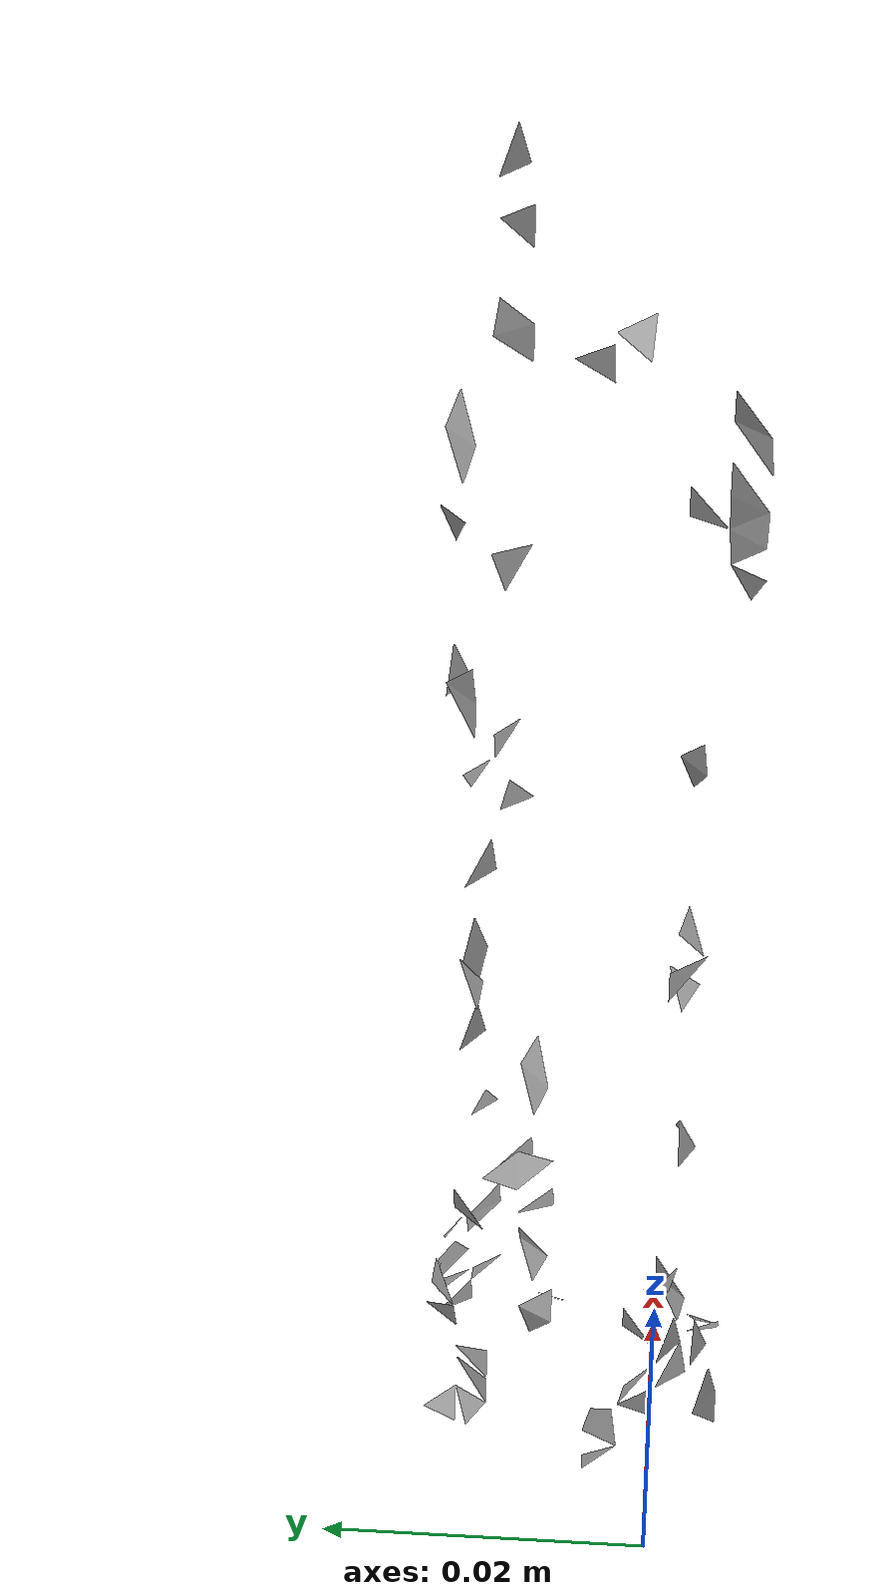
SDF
<?xml version='1.0'?>
<sdf version="1.4">
  <model name="small_marker">
    <static>false</static>
    <link name="link">
      <inertial>
        <pose>0.0032001725192558157 0.0046815585797816105 0.0063914964332603555 -0.020211277298798406 -0.6276743807623592 -1.9393642875164276</pose>
        <mass>9.949254477814756e-06</mass>
        <inertia>
          <ixx>2.4084715538969593e-09</ixx>
          <ixy>1.9048766000589137e-25</ixy>
          <ixz>5.568968023863447e-25</ixz>
          <iyy>1.3477104149527394e-09</iyy>
          <iyz>9.932698934598591e-26</iyz>
          <izz>-7.936753569279303e-10</izz>
        </inertia>
      </inertial>
      <collision name="collision">
        <geometry>
          <mesh>
            <!-- Use a downsampled mesh for collisions -->
            <uri>model://041_small_marker/tsdf/textured.obj</uri>
	        </mesh>
        </geometry>
        <surface>
      </surface>
      </collision>
      <visual name="visual">
        <geometry>
          <mesh>
            <uri>model://041_small_marker/tsdf/textured.obj</uri>
	        </mesh>
        </geometry>
        <material>
          <script>
            <uri>model://041_small_marker/small_marker.material</uri>
            <name>small_marker</name>
          </script>
        </material>
      </visual>
    </link>
  </model>
</sdf>
